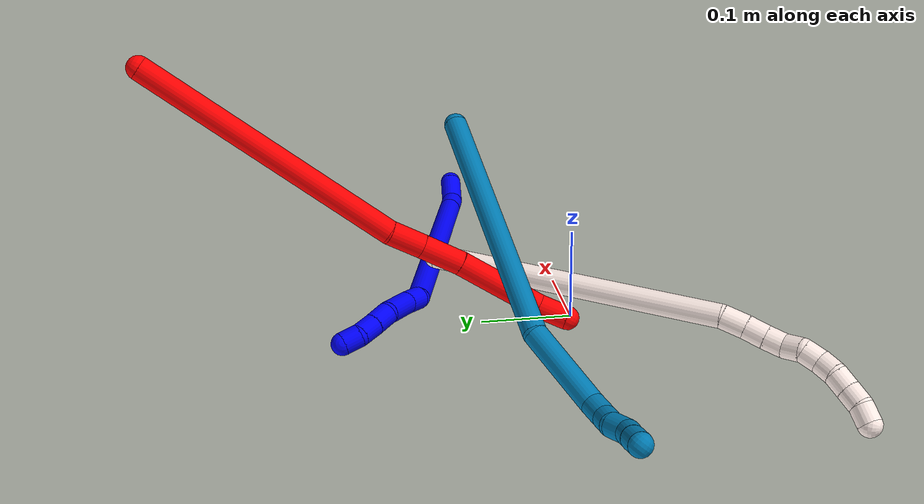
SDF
<sdf version="1.7">
 <world name="default">
  <model name="1">
   <static>0</static>
   <link name="1">
    <collision name="collision-cylinder-e_1_1_4">
     <pose>-0.01138 0.009706 -0.011918 -2.45812 -0.637345 1.49565</pose>
     <geometry><cylinder><radius>0.0125</radius><length>0.038249</length></cylinder></geometry>
     <surface>
      <friction><ode><mu>1.16</mu><mu2>1.16</mu2><slip1>0</slip1><slip2>0</slip2></ode></friction>
      <contact><ode><kp>1e+06</kp><kd>1</kd><max_vel>0</max_vel><min_depth>0.001</min_depth></ode></contact>
     </surface>
    </collision>
    <visual name="visual-cylinder-e_1_1_4">
     <pose>-0.01138 0.009706 -0.011918 -2.45812 -0.637345 1.49565</pose>
     <geometry><cylinder><radius>0.0125</radius><length>0.038249</length></cylinder></geometry>
     <material><ambient>0 0 1 1</ambient></material>
    </visual>
    <collision name="collision-cylinder-e_2_4_5">
     <pose>-0.029485 0.021566 -0.035536 -2.95954 -0.514452 2.47361</pose>
     <geometry><cylinder><radius>0.0125</radius><length>0.027332</length></cylinder></geometry>
     <surface>
      <friction><ode><mu>1.16</mu><mu2>1.16</mu2><slip1>0</slip1><slip2>0</slip2></ode></friction>
      <contact><ode><kp>1e+06</kp><kd>1</kd><max_vel>0</max_vel><min_depth>0.001</min_depth></ode></contact>
     </surface>
    </collision>
    <visual name="visual-cylinder-e_2_4_5">
     <pose>-0.029485 0.021566 -0.035536 -2.95954 -0.514452 2.47361</pose>
     <geometry><cylinder><radius>0.0125</radius><length>0.027332</length></cylinder></geometry>
     <material><ambient>0 0 1 1</ambient></material>
    </visual>
    <collision name="collision-cylinder-e_3_5_6">
     <pose>-0.110078 0.04758 -0.176394 -2.95891 -0.512318 2.46875</pose>
     <geometry><cylinder><radius>0.0125</radius><length>0.301381</length></cylinder></geometry>
     <surface>
      <friction><ode><mu>1.16</mu><mu2>1.16</mu2><slip1>0</slip1><slip2>0</slip2></ode></friction>
      <contact><ode><kp>1e+06</kp><kd>1</kd><max_vel>0</max_vel><min_depth>0.001</min_depth></ode></contact>
     </surface>
    </collision>
    <visual name="visual-cylinder-e_3_5_6">
     <pose>-0.110078 0.04758 -0.176394 -2.95891 -0.512318 2.46875</pose>
     <geometry><cylinder><radius>0.0125</radius><length>0.301381</length></cylinder></geometry>
     <material><ambient>0 0 1 1</ambient></material>
    </visual>
    <collision name="collision-cylinder-e_4_6_7">
     <pose>-0.191898 0.068237 -0.313573 2.7616 -0.744118 -2.22581</pose>
     <geometry><cylinder><radius>0.0125</radius><length>0.023479</length></cylinder></geometry>
     <surface>
      <friction><ode><mu>1.16</mu><mu2>1.16</mu2><slip1>0</slip1><slip2>0</slip2></ode></friction>
      <contact><ode><kp>1e+06</kp><kd>1</kd><max_vel>0</max_vel><min_depth>0.001</min_depth></ode></contact>
     </surface>
    </collision>
    <visual name="visual-cylinder-e_4_6_7">
     <pose>-0.191898 0.068237 -0.313573 2.7616 -0.744118 -2.22581</pose>
     <geometry><cylinder><radius>0.0125</radius><length>0.023479</length></cylinder></geometry>
     <material><ambient>0 0 1 1</ambient></material>
    </visual>
    <collision name="collision-cylinder-e_5_7_8">
     <pose>-0.212707 0.06141 -0.338722 2.9331 -0.633422 -2.52358</pose>
     <geometry><cylinder><radius>0.0125</radius><length>0.043443</length></cylinder></geometry>
     <surface>
      <friction><ode><mu>1.16</mu><mu2>1.16</mu2><slip1>0</slip1><slip2>0</slip2></ode></friction>
      <contact><ode><kp>1e+06</kp><kd>1</kd><max_vel>0</max_vel><min_depth>0.001</min_depth></ode></contact>
     </surface>
    </collision>
    <visual name="visual-cylinder-e_5_7_8">
     <pose>-0.212707 0.06141 -0.338722 2.9331 -0.633422 -2.52358</pose>
     <geometry><cylinder><radius>0.0125</radius><length>0.043443</length></cylinder></geometry>
     <material><ambient>0 0 1 1</ambient></material>
    </visual>
    <collision name="collision-cylinder-e_6_8_9">
     <pose>-0.235827 0.056534 -0.361471 2.92244 -1.05951 -2.77018</pose>
     <geometry><cylinder><radius>0.0125</radius><length>0.023538</length></cylinder></geometry>
     <surface>
      <friction><ode><mu>1.16</mu><mu2>1.16</mu2><slip1>0</slip1><slip2>0</slip2></ode></friction>
      <contact><ode><kp>1e+06</kp><kd>1</kd><max_vel>0</max_vel><min_depth>0.001</min_depth></ode></contact>
     </surface>
    </collision>
    <visual name="visual-cylinder-e_6_8_9">
     <pose>-0.235827 0.056534 -0.361471 2.92244 -1.05951 -2.77018</pose>
     <geometry><cylinder><radius>0.0125</radius><length>0.023538</length></cylinder></geometry>
     <material><ambient>0 0 1 1</ambient></material>
    </visual>
    <collision name="collision-cylinder-e_7_9_10">
     <pose>-0.255804 0.053609 -0.3723 2.83063 -1.05792 -2.61759</pose>
     <geometry><cylinder><radius>0.0125</radius><length>0.022294</length></cylinder></geometry>
     <surface>
      <friction><ode><mu>1.16</mu><mu2>1.16</mu2><slip1>0</slip1><slip2>0</slip2></ode></friction>
      <contact><ode><kp>1e+06</kp><kd>1</kd><max_vel>0</max_vel><min_depth>0.001</min_depth></ode></contact>
     </surface>
    </collision>
    <visual name="visual-cylinder-e_7_9_10">
     <pose>-0.255804 0.053609 -0.3723 2.83063 -1.05792 -2.61759</pose>
     <geometry><cylinder><radius>0.0125</radius><length>0.022294</length></cylinder></geometry>
     <material><ambient>0 0 1 1</ambient></material>
    </visual>
    <collision name="collision-cylinder-e_8_10_2">
     <pose>-0.274937 0.048398 -0.378775 1.91491 -1.19129 -1.53296</pose>
     <geometry><cylinder><radius>0.0125</radius><length>0.020283</length></cylinder></geometry>
     <surface>
      <friction><ode><mu>1.16</mu><mu2>1.16</mu2><slip1>0</slip1><slip2>0</slip2></ode></friction>
      <contact><ode><kp>1e+06</kp><kd>1</kd><max_vel>0</max_vel><min_depth>0.001</min_depth></ode></contact>
     </surface>
    </collision>
    <visual name="visual-cylinder-e_8_10_2">
     <pose>-0.274937 0.048398 -0.378775 1.91491 -1.19129 -1.53296</pose>
     <geometry><cylinder><radius>0.0125</radius><length>0.020283</length></cylinder></geometry>
     <material><ambient>0 0 1 1</ambient></material>
    </visual>
    <collision name="collision-sphere-2">
     <pose>-0.284357 0.044861 -0.380042 0 -0 0</pose>
     <geometry><sphere><radius>0.0125</radius></sphere></geometry>
     <surface>
      <friction><ode><mu>1.16</mu><mu2>1.16</mu2><slip1>0</slip1><slip2>0</slip2></ode></friction>
      <contact><ode><kp>1e+06</kp><kd>1</kd><max_vel>0</max_vel><min_depth>0.001</min_depth></ode></contact>
     </surface>
    </collision>
    <visual name="visual-sphere-2">
     <pose>-0.284357 0.044861 -0.380042 0 -0 0</pose>
     <geometry><sphere><radius>0.0125</radius></sphere></geometry>
     <material><ambient>0 0 1 1</ambient></material>
    </visual>
    <collision name="collision-sphere-10">
     <pose>-0.265517 0.051935 -0.377507 0 -0 0</pose>
     <geometry><sphere><radius>0.0125</radius></sphere></geometry>
     <surface>
      <friction><ode><mu>1.16</mu><mu2>1.16</mu2><slip1>0</slip1><slip2>0</slip2></ode></friction>
      <contact><ode><kp>1e+06</kp><kd>1</kd><max_vel>0</max_vel><min_depth>0.001</min_depth></ode></contact>
     </surface>
    </collision>
    <visual name="visual-sphere-10">
     <pose>-0.265517 0.051935 -0.377507 0 -0 0</pose>
     <geometry><sphere><radius>0.0125</radius></sphere></geometry>
     <material><ambient>0 0 1 1</ambient></material>
    </visual>
    <collision name="collision-sphere-9">
     <pose>-0.246091 0.055282 -0.367092 0 -0 0</pose>
     <geometry><sphere><radius>0.0125</radius></sphere></geometry>
     <surface>
      <friction><ode><mu>1.16</mu><mu2>1.16</mu2><slip1>0</slip1><slip2>0</slip2></ode></friction>
      <contact><ode><kp>1e+06</kp><kd>1</kd><max_vel>0</max_vel><min_depth>0.001</min_depth></ode></contact>
     </surface>
    </collision>
    <visual name="visual-sphere-9">
     <pose>-0.246091 0.055282 -0.367092 0 -0 0</pose>
     <geometry><sphere><radius>0.0125</radius></sphere></geometry>
     <material><ambient>0 0 1 1</ambient></material>
    </visual>
    <collision name="collision-sphere-4">
     <pose>-0.022761 0.019412 -0.023835 0 -0 0</pose>
     <geometry><sphere><radius>0.0125</radius></sphere></geometry>
     <surface>
      <friction><ode><mu>1.16</mu><mu2>1.16</mu2><slip1>0</slip1><slip2>0</slip2></ode></friction>
      <contact><ode><kp>1e+06</kp><kd>1</kd><max_vel>0</max_vel><min_depth>0.001</min_depth></ode></contact>
     </surface>
    </collision>
    <visual name="visual-sphere-4">
     <pose>-0.022761 0.019412 -0.023835 0 -0 0</pose>
     <geometry><sphere><radius>0.0125</radius></sphere></geometry>
     <material><ambient>0 0 1 1</ambient></material>
    </visual>
    <collision name="collision-sphere-1">
     <geometry><sphere><radius>0.0125</radius></sphere></geometry>
     <surface>
      <friction><ode><mu>1.16</mu><mu2>1.16</mu2><slip1>0</slip1><slip2>0</slip2></ode></friction>
      <contact><ode><kp>1e+06</kp><kd>1</kd><max_vel>0</max_vel><min_depth>0.001</min_depth></ode></contact>
     </surface>
    </collision>
    <visual name="visual-sphere-1">
     <geometry><sphere><radius>0.0125</radius></sphere></geometry>
     <material><ambient>0 0 1 1</ambient></material>
    </visual>
    <collision name="collision-sphere-8">
     <pose>-0.225564 0.057786 -0.355851 0 -0 0</pose>
     <geometry><sphere><radius>0.0125</radius></sphere></geometry>
     <surface>
      <friction><ode><mu>1.16</mu><mu2>1.16</mu2><slip1>0</slip1><slip2>0</slip2></ode></friction>
      <contact><ode><kp>1e+06</kp><kd>1</kd><max_vel>0</max_vel><min_depth>0.001</min_depth></ode></contact>
     </surface>
    </collision>
    <visual name="visual-sphere-8">
     <pose>-0.225564 0.057786 -0.355851 0 -0 0</pose>
     <geometry><sphere><radius>0.0125</radius></sphere></geometry>
     <material><ambient>0 0 1 1</ambient></material>
    </visual>
    <collision name="collision-sphere-5">
     <pose>-0.03621 0.02372 -0.047236 0 -0 0</pose>
     <geometry><sphere><radius>0.0125</radius></sphere></geometry>
     <surface>
      <friction><ode><mu>1.16</mu><mu2>1.16</mu2><slip1>0</slip1><slip2>0</slip2></ode></friction>
      <contact><ode><kp>1e+06</kp><kd>1</kd><max_vel>0</max_vel><min_depth>0.001</min_depth></ode></contact>
     </surface>
    </collision>
    <visual name="visual-sphere-5">
     <pose>-0.03621 0.02372 -0.047236 0 -0 0</pose>
     <geometry><sphere><radius>0.0125</radius></sphere></geometry>
     <material><ambient>0 0 1 1</ambient></material>
    </visual>
    <collision name="collision-sphere-6">
     <pose>-0.183946 0.071441 -0.305552 0 -0 0</pose>
     <geometry><sphere><radius>0.0125</radius></sphere></geometry>
     <surface>
      <friction><ode><mu>1.16</mu><mu2>1.16</mu2><slip1>0</slip1><slip2>0</slip2></ode></friction>
      <contact><ode><kp>1e+06</kp><kd>1</kd><max_vel>0</max_vel><min_depth>0.001</min_depth></ode></contact>
     </surface>
    </collision>
    <visual name="visual-sphere-6">
     <pose>-0.183946 0.071441 -0.305552 0 -0 0</pose>
     <geometry><sphere><radius>0.0125</radius></sphere></geometry>
     <material><ambient>0 0 1 1</ambient></material>
    </visual>
    <collision name="collision-sphere-7">
     <pose>-0.199849 0.065034 -0.321594 0 -0 0</pose>
     <geometry><sphere><radius>0.0125</radius></sphere></geometry>
     <surface>
      <friction><ode><mu>1.16</mu><mu2>1.16</mu2><slip1>0</slip1><slip2>0</slip2></ode></friction>
      <contact><ode><kp>1e+06</kp><kd>1</kd><max_vel>0</max_vel><min_depth>0.001</min_depth></ode></contact>
     </surface>
    </collision>
    <visual name="visual-sphere-7">
     <pose>-0.199849 0.065034 -0.321594 0 -0 0</pose>
     <geometry><sphere><radius>0.0125</radius></sphere></geometry>
     <material><ambient>0 0 1 1</ambient></material>
    </visual>
    <inertial>
     <pose>-0.129987 0.046156 -0.202316 0 -0 0</pose>
     <mass>0.5</mass>
     <inertia>
      <ixx>-0.000349</ixx>
      <ixy>0</ixy>
      <ixz>0</ixz>
      <iyy>0.003158</iyy>
      <iyz>0</iyz>
      <izz>0.000747</izz>
     </inertia>
    </inertial>
   </link>
   <pose>0.3883 0.079809 0.026536 -2.23077 -0.650022 -1.13955</pose>
  </model>
  <model name="2">
   <static>0</static>
   <link name="2">
    <collision name="collision-cylinder-e_1_1_4">
     <pose>-0.00029 0.008816 -0.146254 -3.08139 -0.001978 0.065666</pose>
     <geometry><cylinder><radius>0.0125</radius><length>0.293039</length></cylinder></geometry>
     <surface>
      <friction><ode><mu>1.16</mu><mu2>1.16</mu2><slip1>0</slip1><slip2>0</slip2></ode></friction>
      <contact><ode><kp>1e+06</kp><kd>1</kd><max_vel>0</max_vel><min_depth>0.001</min_depth></ode></contact>
     </surface>
    </collision>
    <visual name="visual-cylinder-e_1_1_4">
     <pose>-0.00029 0.008816 -0.146254 -3.08139 -0.001978 0.065666</pose>
     <geometry><cylinder><radius>0.0125</radius><length>0.293039</length></cylinder></geometry>
     <material><ambient>1 0 0 1</ambient></material>
    </visual>
    <collision name="collision-cylinder-e_2_4_5">
     <pose>0.002159 0.015623 -0.310561 3.03079 0.149621 1.86755</pose>
     <geometry><cylinder><radius>0.0125</radius><length>0.036741</length></cylinder></geometry>
     <surface>
      <friction><ode><mu>1.16</mu><mu2>1.16</mu2><slip1>0</slip1><slip2>0</slip2></ode></friction>
      <contact><ode><kp>1e+06</kp><kd>1</kd><max_vel>0</max_vel><min_depth>0.001</min_depth></ode></contact>
     </surface>
    </collision>
    <visual name="visual-cylinder-e_2_4_5">
     <pose>0.002159 0.015623 -0.310561 3.03079 0.149621 1.86755</pose>
     <geometry><cylinder><radius>0.0125</radius><length>0.036741</length></cylinder></geometry>
     <material><ambient>1 0 0 1</ambient></material>
    </visual>
    <collision name="collision-cylinder-e_3_5_6">
     <pose>0.005888 0.011326 -0.350513 3.03747 0.044981 0.815051</pose>
     <geometry><cylinder><radius>0.0125</radius><length>0.04408</length></cylinder></geometry>
     <surface>
      <friction><ode><mu>1.16</mu><mu2>1.16</mu2><slip1>0</slip1><slip2>0</slip2></ode></friction>
      <contact><ode><kp>1e+06</kp><kd>1</kd><max_vel>0</max_vel><min_depth>0.001</min_depth></ode></contact>
     </surface>
    </collision>
    <visual name="visual-cylinder-e_3_5_6">
     <pose>0.005888 0.011326 -0.350513 3.03747 0.044981 0.815051</pose>
     <geometry><cylinder><radius>0.0125</radius><length>0.04408</length></cylinder></geometry>
     <material><ambient>1 0 0 1</ambient></material>
    </visual>
    <collision name="collision-cylinder-e_4_6_7">
     <pose>0.00878 0.008294 -0.419253 3.1257 0.040558 2.39489</pose>
     <geometry><cylinder><radius>0.0125</radius><length>0.093772</length></cylinder></geometry>
     <surface>
      <friction><ode><mu>1.16</mu><mu2>1.16</mu2><slip1>0</slip1><slip2>0</slip2></ode></friction>
      <contact><ode><kp>1e+06</kp><kd>1</kd><max_vel>0</max_vel><min_depth>0.001</min_depth></ode></contact>
     </surface>
    </collision>
    <visual name="visual-cylinder-e_4_6_7">
     <pose>0.00878 0.008294 -0.419253 3.1257 0.040558 2.39489</pose>
     <geometry><cylinder><radius>0.0125</radius><length>0.093772</length></cylinder></geometry>
     <material><ambient>1 0 0 1</ambient></material>
    </visual>
    <collision name="collision-cylinder-e_5_7_2">
     <pose>0.006238 0.005461 -0.481516 3.00702 -0.278117 -2.24415</pose>
     <geometry><cylinder><radius>0.0125</radius><length>0.032368</length></cylinder></geometry>
     <surface>
      <friction><ode><mu>1.16</mu><mu2>1.16</mu2><slip1>0</slip1><slip2>0</slip2></ode></friction>
      <contact><ode><kp>1e+06</kp><kd>1</kd><max_vel>0</max_vel><min_depth>0.001</min_depth></ode></contact>
     </surface>
    </collision>
    <visual name="visual-cylinder-e_5_7_2">
     <pose>0.006238 0.005461 -0.481516 3.00702 -0.278117 -2.24415</pose>
     <geometry><cylinder><radius>0.0125</radius><length>0.032368</length></cylinder></geometry>
     <material><ambient>1 0 0 1</ambient></material>
    </visual>
    <collision name="collision-sphere-2">
     <pose>0.001795 0.003373 -0.496938 0 -0 0</pose>
     <geometry><sphere><radius>0.0125</radius></sphere></geometry>
     <surface>
      <friction><ode><mu>1.16</mu><mu2>1.16</mu2><slip1>0</slip1><slip2>0</slip2></ode></friction>
      <contact><ode><kp>1e+06</kp><kd>1</kd><max_vel>0</max_vel><min_depth>0.001</min_depth></ode></contact>
     </surface>
    </collision>
    <visual name="visual-sphere-2">
     <pose>0.001795 0.003373 -0.496938 0 -0 0</pose>
     <geometry><sphere><radius>0.0125</radius></sphere></geometry>
     <material><ambient>1 0 0 1</ambient></material>
    </visual>
    <collision name="collision-sphere-7">
     <pose>0.010681 0.007549 -0.466095 0 -0 0</pose>
     <geometry><sphere><radius>0.0125</radius></sphere></geometry>
     <surface>
      <friction><ode><mu>1.16</mu><mu2>1.16</mu2><slip1>0</slip1><slip2>0</slip2></ode></friction>
      <contact><ode><kp>1e+06</kp><kd>1</kd><max_vel>0</max_vel><min_depth>0.001</min_depth></ode></contact>
     </surface>
    </collision>
    <visual name="visual-sphere-7">
     <pose>0.010681 0.007549 -0.466095 0 -0 0</pose>
     <geometry><sphere><radius>0.0125</radius></sphere></geometry>
     <material><ambient>1 0 0 1</ambient></material>
    </visual>
    <collision name="collision-sphere-6">
     <pose>0.006879 0.009038 -0.372412 0 -0 0</pose>
     <geometry><sphere><radius>0.0125</radius></sphere></geometry>
     <surface>
      <friction><ode><mu>1.16</mu><mu2>1.16</mu2><slip1>0</slip1><slip2>0</slip2></ode></friction>
      <contact><ode><kp>1e+06</kp><kd>1</kd><max_vel>0</max_vel><min_depth>0.001</min_depth></ode></contact>
     </surface>
    </collision>
    <visual name="visual-sphere-6">
     <pose>0.006879 0.009038 -0.372412 0 -0 0</pose>
     <geometry><sphere><radius>0.0125</radius></sphere></geometry>
     <material><ambient>1 0 0 1</ambient></material>
    </visual>
    <collision name="collision-sphere-5">
     <pose>0.004897 0.013615 -0.328615 0 -0 0</pose>
     <geometry><sphere><radius>0.0125</radius></sphere></geometry>
     <surface>
      <friction><ode><mu>1.16</mu><mu2>1.16</mu2><slip1>0</slip1><slip2>0</slip2></ode></friction>
      <contact><ode><kp>1e+06</kp><kd>1</kd><max_vel>0</max_vel><min_depth>0.001</min_depth></ode></contact>
     </surface>
    </collision>
    <visual name="visual-sphere-5">
     <pose>0.004897 0.013615 -0.328615 0 -0 0</pose>
     <geometry><sphere><radius>0.0125</radius></sphere></geometry>
     <material><ambient>1 0 0 1</ambient></material>
    </visual>
    <collision name="collision-sphere-1">
     <geometry><sphere><radius>0.0125</radius></sphere></geometry>
     <surface>
      <friction><ode><mu>1.16</mu><mu2>1.16</mu2><slip1>0</slip1><slip2>0</slip2></ode></friction>
      <contact><ode><kp>1e+06</kp><kd>1</kd><max_vel>0</max_vel><min_depth>0.001</min_depth></ode></contact>
     </surface>
    </collision>
    <visual name="visual-sphere-1">
     <geometry><sphere><radius>0.0125</radius></sphere></geometry>
     <material><ambient>1 0 0 1</ambient></material>
    </visual>
    <collision name="collision-sphere-4">
     <pose>-0.00058 0.017632 -0.292507 0 -0 0</pose>
     <geometry><sphere><radius>0.0125</radius></sphere></geometry>
     <surface>
      <friction><ode><mu>1.16</mu><mu2>1.16</mu2><slip1>0</slip1><slip2>0</slip2></ode></friction>
      <contact><ode><kp>1e+06</kp><kd>1</kd><max_vel>0</max_vel><min_depth>0.001</min_depth></ode></contact>
     </surface>
    </collision>
    <visual name="visual-sphere-4">
     <pose>-0.00058 0.017632 -0.292507 0 -0 0</pose>
     <geometry><sphere><radius>0.0125</radius></sphere></geometry>
     <material><ambient>1 0 0 1</ambient></material>
    </visual>
    <inertial>
     <pose>0.002558 0.009222 -0.249238 0 -0 0</pose>
     <mass>0.5</mass>
     <inertia>
      <ixx>0.002249</ixx>
      <ixy>0</ixy>
      <ixz>0</ixz>
      <iyy>-0.001852</iyy>
      <iyz>0</iyz>
      <izz>-0.000161</izz>
     </inertia>
    </inertial>
   </link>
   <pose>-0.040679 0.442279 0.316303 -0.988297 0.279137 0.007842</pose>
  </model>
  <model name="9">
   <static>0</static>
   <link name="9">
    <collision name="collision-cylinder-e_1_1_4">
     <pose>-0.137821 -0.007368 -0.057182 3.01345 -1.17459 -2.94941</pose>
     <geometry><cylinder><radius>0.0125</radius><length>0.298788</length></cylinder></geometry>
     <surface>
      <friction><ode><mu>1.16</mu><mu2>1.16</mu2><slip1>0</slip1><slip2>0</slip2></ode></friction>
      <contact><ode><kp>1e+06</kp><kd>1</kd><max_vel>0</max_vel><min_depth>0.001</min_depth></ode></contact>
     </surface>
    </collision>
    <visual name="visual-cylinder-e_1_1_4">
     <pose>-0.137821 -0.007368 -0.057182 3.01345 -1.17459 -2.94941</pose>
     <geometry><cylinder><radius>0.0125</radius><length>0.298788</length></cylinder></geometry>
     <material><ambient>0 0.490196 0.709804 1</ambient></material>
    </visual>
    <collision name="collision-cylinder-e_2_4_5">
     <pose>-0.318452 -0.031024 -0.122426 2.03044 -1.16931 -1.63476</pose>
     <geometry><cylinder><radius>0.0125</radius><length>0.093017</length></cylinder></geometry>
     <surface>
      <friction><ode><mu>1.16</mu><mu2>1.16</mu2><slip1>0</slip1><slip2>0</slip2></ode></friction>
      <contact><ode><kp>1e+06</kp><kd>1</kd><max_vel>0</max_vel><min_depth>0.001</min_depth></ode></contact>
     </surface>
    </collision>
    <visual name="visual-cylinder-e_2_4_5">
     <pose>-0.318452 -0.031024 -0.122426 2.03044 -1.16931 -1.63476</pose>
     <geometry><cylinder><radius>0.0125</radius><length>0.093017</length></cylinder></geometry>
     <material><ambient>0 0.490196 0.709804 1</ambient></material>
    </visual>
    <collision name="collision-cylinder-e_3_5_6">
     <pose>-0.373555 -0.045992 -0.131141 -2.02921 -1.45156 1.91937</pose>
     <geometry><cylinder><radius>0.0125</radius><length>0.02476</length></cylinder></geometry>
     <surface>
      <friction><ode><mu>1.16</mu><mu2>1.16</mu2><slip1>0</slip1><slip2>0</slip2></ode></friction>
      <contact><ode><kp>1e+06</kp><kd>1</kd><max_vel>0</max_vel><min_depth>0.001</min_depth></ode></contact>
     </surface>
    </collision>
    <visual name="visual-cylinder-e_3_5_6">
     <pose>-0.373555 -0.045992 -0.131141 -2.02921 -1.45156 1.91937</pose>
     <geometry><cylinder><radius>0.0125</radius><length>0.02476</length></cylinder></geometry>
     <material><ambient>0 0.490196 0.709804 1</ambient></material>
    </visual>
    <collision name="collision-cylinder-e_4_6_7">
     <pose>-0.395139 -0.040682 -0.131779 -1.56751 -1.16516 1.16214</pose>
     <geometry><cylinder><radius>0.0125</radius><length>0.020225</length></cylinder></geometry>
     <surface>
      <friction><ode><mu>1.16</mu><mu2>1.16</mu2><slip1>0</slip1><slip2>0</slip2></ode></friction>
      <contact><ode><kp>1e+06</kp><kd>1</kd><max_vel>0</max_vel><min_depth>0.001</min_depth></ode></contact>
     </surface>
    </collision>
    <visual name="visual-cylinder-e_4_6_7">
     <pose>-0.395139 -0.040682 -0.131779 -1.56751 -1.16516 1.16214</pose>
     <geometry><cylinder><radius>0.0125</radius><length>0.020225</length></cylinder></geometry>
     <material><ambient>0 0.490196 0.709804 1</ambient></material>
    </visual>
    <collision name="collision-cylinder-e_5_7_8">
     <pose>-0.415226 -0.035884 -0.129176 -0.302187 -1.32457 0.236342</pose>
     <geometry><cylinder><radius>0.0125</radius><length>0.022263</length></cylinder></geometry>
     <surface>
      <friction><ode><mu>1.16</mu><mu2>1.16</mu2><slip1>0</slip1><slip2>0</slip2></ode></friction>
      <contact><ode><kp>1e+06</kp><kd>1</kd><max_vel>0</max_vel><min_depth>0.001</min_depth></ode></contact>
     </surface>
    </collision>
    <visual name="visual-cylinder-e_5_7_8">
     <pose>-0.415226 -0.035884 -0.129176 -0.302187 -1.32457 0.236342</pose>
     <geometry><cylinder><radius>0.0125</radius><length>0.022263</length></cylinder></geometry>
     <material><ambient>0 0.490196 0.709804 1</ambient></material>
    </visual>
    <collision name="collision-cylinder-e_6_8_9">
     <pose>-0.434879 -0.029774 -0.126337 -1.52396 -1.03084 0.991144</pose>
     <geometry><cylinder><radius>0.0125</radius><length>0.020651</length></cylinder></geometry>
     <surface>
      <friction><ode><mu>1.16</mu><mu2>1.16</mu2><slip1>0</slip1><slip2>0</slip2></ode></friction>
      <contact><ode><kp>1e+06</kp><kd>1</kd><max_vel>0</max_vel><min_depth>0.001</min_depth></ode></contact>
     </surface>
    </collision>
    <visual name="visual-cylinder-e_6_8_9">
     <pose>-0.434879 -0.029774 -0.126337 -1.52396 -1.03084 0.991144</pose>
     <geometry><cylinder><radius>0.0125</radius><length>0.020651</length></cylinder></geometry>
     <material><ambient>0 0.490196 0.709804 1</ambient></material>
    </visual>
    <collision name="collision-cylinder-e_7_9_2">
     <pose>-0.452861 -0.020054 -0.125656 -1.47329 -1.11817 1.0323</pose>
     <geometry><cylinder><radius>0.0125</radius><length>0.020295</length></cylinder></geometry>
     <surface>
      <friction><ode><mu>1.16</mu><mu2>1.16</mu2><slip1>0</slip1><slip2>0</slip2></ode></friction>
      <contact><ode><kp>1e+06</kp><kd>1</kd><max_vel>0</max_vel><min_depth>0.001</min_depth></ode></contact>
     </surface>
    </collision>
    <visual name="visual-cylinder-e_7_9_2">
     <pose>-0.452861 -0.020054 -0.125656 -1.47329 -1.11817 1.0323</pose>
     <geometry><cylinder><radius>0.0125</radius><length>0.020295</length></cylinder></geometry>
     <material><ambient>0 0.490196 0.709804 1</ambient></material>
    </visual>
    <collision name="collision-sphere-2">
     <pose>-0.461987 -0.015637 -0.125224 0 -0 0</pose>
     <geometry><sphere><radius>0.0125</radius></sphere></geometry>
     <surface>
      <friction><ode><mu>1.16</mu><mu2>1.16</mu2><slip1>0</slip1><slip2>0</slip2></ode></friction>
      <contact><ode><kp>1e+06</kp><kd>1</kd><max_vel>0</max_vel><min_depth>0.001</min_depth></ode></contact>
     </surface>
    </collision>
    <visual name="visual-sphere-2">
     <pose>-0.461987 -0.015637 -0.125224 0 -0 0</pose>
     <geometry><sphere><radius>0.0125</radius></sphere></geometry>
     <material><ambient>0 0.490196 0.709804 1</ambient></material>
    </visual>
    <collision name="collision-sphere-9">
     <pose>-0.443735 -0.024471 -0.126088 0 -0 0</pose>
     <geometry><sphere><radius>0.0125</radius></sphere></geometry>
     <surface>
      <friction><ode><mu>1.16</mu><mu2>1.16</mu2><slip1>0</slip1><slip2>0</slip2></ode></friction>
      <contact><ode><kp>1e+06</kp><kd>1</kd><max_vel>0</max_vel><min_depth>0.001</min_depth></ode></contact>
     </surface>
    </collision>
    <visual name="visual-sphere-9">
     <pose>-0.443735 -0.024471 -0.126088 0 -0 0</pose>
     <geometry><sphere><radius>0.0125</radius></sphere></geometry>
     <material><ambient>0 0.490196 0.709804 1</ambient></material>
    </visual>
    <collision name="collision-sphere-4">
     <pose>-0.275642 -0.014736 -0.114363 0 -0 0</pose>
     <geometry><sphere><radius>0.0125</radius></sphere></geometry>
     <surface>
      <friction><ode><mu>1.16</mu><mu2>1.16</mu2><slip1>0</slip1><slip2>0</slip2></ode></friction>
      <contact><ode><kp>1e+06</kp><kd>1</kd><max_vel>0</max_vel><min_depth>0.001</min_depth></ode></contact>
     </surface>
    </collision>
    <visual name="visual-sphere-4">
     <pose>-0.275642 -0.014736 -0.114363 0 -0 0</pose>
     <geometry><sphere><radius>0.0125</radius></sphere></geometry>
     <material><ambient>0 0.490196 0.709804 1</ambient></material>
    </visual>
    <collision name="collision-sphere-1">
     <geometry><sphere><radius>0.0125</radius></sphere></geometry>
     <surface>
      <friction><ode><mu>1.16</mu><mu2>1.16</mu2><slip1>0</slip1><slip2>0</slip2></ode></friction>
      <contact><ode><kp>1e+06</kp><kd>1</kd><max_vel>0</max_vel><min_depth>0.001</min_depth></ode></contact>
     </surface>
    </collision>
    <visual name="visual-sphere-1">
     <geometry><sphere><radius>0.0125</radius></sphere></geometry>
     <material><ambient>0 0.490196 0.709804 1</ambient></material>
    </visual>
    <collision name="collision-sphere-8">
     <pose>-0.426022 -0.035076 -0.126585 0 -0 0</pose>
     <geometry><sphere><radius>0.0125</radius></sphere></geometry>
     <surface>
      <friction><ode><mu>1.16</mu><mu2>1.16</mu2><slip1>0</slip1><slip2>0</slip2></ode></friction>
      <contact><ode><kp>1e+06</kp><kd>1</kd><max_vel>0</max_vel><min_depth>0.001</min_depth></ode></contact>
     </surface>
    </collision>
    <visual name="visual-sphere-8">
     <pose>-0.426022 -0.035076 -0.126585 0 -0 0</pose>
     <geometry><sphere><radius>0.0125</radius></sphere></geometry>
     <material><ambient>0 0.490196 0.709804 1</ambient></material>
    </visual>
    <collision name="collision-sphere-5">
     <pose>-0.361262 -0.047313 -0.130489 0 -0 0</pose>
     <geometry><sphere><radius>0.0125</radius></sphere></geometry>
     <surface>
      <friction><ode><mu>1.16</mu><mu2>1.16</mu2><slip1>0</slip1><slip2>0</slip2></ode></friction>
      <contact><ode><kp>1e+06</kp><kd>1</kd><max_vel>0</max_vel><min_depth>0.001</min_depth></ode></contact>
     </surface>
    </collision>
    <visual name="visual-sphere-5">
     <pose>-0.361262 -0.047313 -0.130489 0 -0 0</pose>
     <geometry><sphere><radius>0.0125</radius></sphere></geometry>
     <material><ambient>0 0.490196 0.709804 1</ambient></material>
    </visual>
    <collision name="collision-sphere-6">
     <pose>-0.385847 -0.044672 -0.131792 0 -0 0</pose>
     <geometry><sphere><radius>0.0125</radius></sphere></geometry>
     <surface>
      <friction><ode><mu>1.16</mu><mu2>1.16</mu2><slip1>0</slip1><slip2>0</slip2></ode></friction>
      <contact><ode><kp>1e+06</kp><kd>1</kd><max_vel>0</max_vel><min_depth>0.001</min_depth></ode></contact>
     </surface>
    </collision>
    <visual name="visual-sphere-6">
     <pose>-0.385847 -0.044672 -0.131792 0 -0 0</pose>
     <geometry><sphere><radius>0.0125</radius></sphere></geometry>
     <material><ambient>0 0.490196 0.709804 1</ambient></material>
    </visual>
    <collision name="collision-sphere-7">
     <pose>-0.40443 -0.036691 -0.131766 0 -0 0</pose>
     <geometry><sphere><radius>0.0125</radius></sphere></geometry>
     <surface>
      <friction><ode><mu>1.16</mu><mu2>1.16</mu2><slip1>0</slip1><slip2>0</slip2></ode></friction>
      <contact><ode><kp>1e+06</kp><kd>1</kd><max_vel>0</max_vel><min_depth>0.001</min_depth></ode></contact>
     </surface>
    </collision>
    <visual name="visual-sphere-7">
     <pose>-0.40443 -0.036691 -0.131766 0 -0 0</pose>
     <geometry><sphere><radius>0.0125</radius></sphere></geometry>
     <material><ambient>0 0.490196 0.709804 1</ambient></material>
    </visual>
    <inertial>
     <pose>-0.230915 -0.017739 -0.084841 0 -0 0</pose>
     <mass>0.5</mass>
     <inertia>
      <ixx>-0.001073</ixx>
      <ixy>0</ixy>
      <ixz>0</ixz>
      <iyy>0.002102</iyy>
      <iyz>0</iyz>
      <izz>0.002257</izz>
     </inertia>
    </inertial>
   </link>
   <pose>0.084646 0.114977 0.202238 0.718456 -0.146307 0.391834</pose>
  </model>
  <model name="11">
   <static>0</static>
   <link name="11">
    <collision name="collision-cylinder-e_1_1_4">
     <pose>0.000202 0.000217 0.155852 -0.001394 0.001299 -1e-06</pose>
     <geometry><cylinder><radius>0.0125</radius><length>0.311705</length></cylinder></geometry>
     <surface>
      <friction><ode><mu>1.16</mu><mu2>1.16</mu2><slip1>0</slip1><slip2>0</slip2></ode></friction>
      <contact><ode><kp>1e+06</kp><kd>1</kd><max_vel>0</max_vel><min_depth>0.001</min_depth></ode></contact>
     </surface>
    </collision>
    <visual name="visual-cylinder-e_1_1_4">
     <pose>0.000202 0.000217 0.155852 -0.001394 0.001299 -1e-06</pose>
     <geometry><cylinder><radius>0.0125</radius><length>0.311705</length></cylinder></geometry>
     <material><ambient>1 0.933333 0.909804 1</ambient></material>
    </visual>
    <collision name="collision-cylinder-e_2_4_5">
     <pose>-0.001889 -0.002131 0.324164 0.203065 -0.178401 -0.018224</pose>
     <geometry><cylinder><radius>0.0125</radius><length>0.025852</length></cylinder></geometry>
     <surface>
      <friction><ode><mu>1.16</mu><mu2>1.16</mu2><slip1>0</slip1><slip2>0</slip2></ode></friction>
      <contact><ode><kp>1e+06</kp><kd>1</kd><max_vel>0</max_vel><min_depth>0.001</min_depth></ode></contact>
     </surface>
    </collision>
    <visual name="visual-cylinder-e_2_4_5">
     <pose>-0.001889 -0.002131 0.324164 0.203065 -0.178401 -0.018224</pose>
     <geometry><cylinder><radius>0.0125</radius><length>0.025852</length></cylinder></geometry>
     <material><ambient>1 0.933333 0.909804 1</ambient></material>
    </visual>
    <collision name="collision-cylinder-e_3_5_6">
     <pose>-0.006901 -0.006061 0.347111 0.129429 -0.251532 -0.016387</pose>
     <geometry><cylinder><radius>0.0125</radius><length>0.02184</length></cylinder></geometry>
     <surface>
      <friction><ode><mu>1.16</mu><mu2>1.16</mu2><slip1>0</slip1><slip2>0</slip2></ode></friction>
      <contact><ode><kp>1e+06</kp><kd>1</kd><max_vel>0</max_vel><min_depth>0.001</min_depth></ode></contact>
     </surface>
    </collision>
    <visual name="visual-cylinder-e_3_5_6">
     <pose>-0.006901 -0.006061 0.347111 0.129429 -0.251532 -0.016387</pose>
     <geometry><cylinder><radius>0.0125</radius><length>0.02184</length></cylinder></geometry>
     <material><ambient>1 0.933333 0.909804 1</ambient></material>
    </visual>
    <collision name="collision-cylinder-e_4_6_7">
     <pose>-0.01178 -0.008545 0.367459 0.112996 -0.214438 -0.012175</pose>
     <geometry><cylinder><radius>0.0125</radius><length>0.020312</length></cylinder></geometry>
     <surface>
      <friction><ode><mu>1.16</mu><mu2>1.16</mu2><slip1>0</slip1><slip2>0</slip2></ode></friction>
      <contact><ode><kp>1e+06</kp><kd>1</kd><max_vel>0</max_vel><min_depth>0.001</min_depth></ode></contact>
     </surface>
    </collision>
    <visual name="visual-cylinder-e_4_6_7">
     <pose>-0.01178 -0.008545 0.367459 0.112996 -0.214438 -0.012175</pose>
     <geometry><cylinder><radius>0.0125</radius><length>0.020312</length></cylinder></geometry>
     <material><ambient>1 0.933333 0.909804 1</ambient></material>
    </visual>
    <collision name="collision-cylinder-e_5_7_8">
     <pose>-0.014524 -0.00673 0.386941 -0.296039 -0.057933 0.008641</pose>
     <geometry><cylinder><radius>0.0125</radius><length>0.020152</length></cylinder></geometry>
     <surface>
      <friction><ode><mu>1.16</mu><mu2>1.16</mu2><slip1>0</slip1><slip2>0</slip2></ode></friction>
      <contact><ode><kp>1e+06</kp><kd>1</kd><max_vel>0</max_vel><min_depth>0.001</min_depth></ode></contact>
     </surface>
    </collision>
    <visual name="visual-cylinder-e_5_7_8">
     <pose>-0.014524 -0.00673 0.386941 -0.296039 -0.057933 0.008641</pose>
     <geometry><cylinder><radius>0.0125</radius><length>0.020152</length></cylinder></geometry>
     <material><ambient>1 0.933333 0.909804 1</ambient></material>
    </visual>
    <collision name="collision-cylinder-e_6_8_9">
     <pose>-0.018619 -0.005133 0.405836 0.143244 -0.358539 -0.026001</pose>
     <geometry><cylinder><radius>0.0125</radius><length>0.020013</length></cylinder></geometry>
     <surface>
      <friction><ode><mu>1.16</mu><mu2>1.16</mu2><slip1>0</slip1><slip2>0</slip2></ode></friction>
      <contact><ode><kp>1e+06</kp><kd>1</kd><max_vel>0</max_vel><min_depth>0.001</min_depth></ode></contact>
     </surface>
    </collision>
    <visual name="visual-cylinder-e_6_8_9">
     <pose>-0.018619 -0.005133 0.405836 0.143244 -0.358539 -0.026001</pose>
     <geometry><cylinder><radius>0.0125</radius><length>0.020013</length></cylinder></geometry>
     <material><ambient>1 0.933333 0.909804 1</ambient></material>
    </visual>
    <collision name="collision-cylinder-e_7_9_10">
     <pose>-0.026836 -0.00391 0.423626 -0.292128 -0.486713 0.073016</pose>
     <geometry><cylinder><radius>0.0125</radius><length>0.020121</length></cylinder></geometry>
     <surface>
      <friction><ode><mu>1.16</mu><mu2>1.16</mu2><slip1>0</slip1><slip2>0</slip2></ode></friction>
      <contact><ode><kp>1e+06</kp><kd>1</kd><max_vel>0</max_vel><min_depth>0.001</min_depth></ode></contact>
     </surface>
    </collision>
    <visual name="visual-cylinder-e_7_9_10">
     <pose>-0.026836 -0.00391 0.423626 -0.292128 -0.486713 0.073016</pose>
     <geometry><cylinder><radius>0.0125</radius><length>0.020121</length></cylinder></geometry>
     <material><ambient>1 0.933333 0.909804 1</ambient></material>
    </visual>
    <collision name="collision-cylinder-e_8_10_11">
     <pose>-0.037845 -0.001357 0.439907 0.000998 -0.681836 -0.000354</pose>
     <geometry><cylinder><radius>0.0125</radius><length>0.020004</length></cylinder></geometry>
     <surface>
      <friction><ode><mu>1.16</mu><mu2>1.16</mu2><slip1>0</slip1><slip2>0</slip2></ode></friction>
      <contact><ode><kp>1e+06</kp><kd>1</kd><max_vel>0</max_vel><min_depth>0.001</min_depth></ode></contact>
     </surface>
    </collision>
    <visual name="visual-cylinder-e_8_10_11">
     <pose>-0.037845 -0.001357 0.439907 0.000998 -0.681836 -0.000354</pose>
     <geometry><cylinder><radius>0.0125</radius><length>0.020004</length></cylinder></geometry>
     <material><ambient>1 0.933333 0.909804 1</ambient></material>
    </visual>
    <collision name="collision-cylinder-e_9_11_12">
     <pose>-0.050411 0.000443 0.455257 -0.233908 -0.676733 0.082642</pose>
     <geometry><cylinder><radius>0.0125</radius><length>0.020001</length></cylinder></geometry>
     <surface>
      <friction><ode><mu>1.16</mu><mu2>1.16</mu2><slip1>0</slip1><slip2>0</slip2></ode></friction>
      <contact><ode><kp>1e+06</kp><kd>1</kd><max_vel>0</max_vel><min_depth>0.001</min_depth></ode></contact>
     </surface>
    </collision>
    <visual name="visual-cylinder-e_9_11_12">
     <pose>-0.050411 0.000443 0.455257 -0.233908 -0.676733 0.082642</pose>
     <geometry><cylinder><radius>0.0125</radius><length>0.020001</length></cylinder></geometry>
     <material><ambient>1 0.933333 0.909804 1</ambient></material>
    </visual>
    <collision name="collision-cylinder-e_10_12_2">
     <pose>-0.064664 0.002499 0.46885 -0.041384 -0.925647 0.020651</pose>
     <geometry><cylinder><radius>0.0125</radius><length>0.02</length></cylinder></geometry>
     <surface>
      <friction><ode><mu>1.16</mu><mu2>1.16</mu2><slip1>0</slip1><slip2>0</slip2></ode></friction>
      <contact><ode><kp>1e+06</kp><kd>1</kd><max_vel>0</max_vel><min_depth>0.001</min_depth></ode></contact>
     </surface>
    </collision>
    <visual name="visual-cylinder-e_10_12_2">
     <pose>-0.064664 0.002499 0.46885 -0.041384 -0.925647 0.020651</pose>
     <geometry><cylinder><radius>0.0125</radius><length>0.02</length></cylinder></geometry>
     <material><ambient>1 0.933333 0.909804 1</ambient></material>
    </visual>
    <collision name="collision-sphere-2">
     <pose>-0.072654 0.002748 0.474858 0 -0 0</pose>
     <geometry><sphere><radius>0.0125</radius></sphere></geometry>
     <surface>
      <friction><ode><mu>1.16</mu><mu2>1.16</mu2><slip1>0</slip1><slip2>0</slip2></ode></friction>
      <contact><ode><kp>1e+06</kp><kd>1</kd><max_vel>0</max_vel><min_depth>0.001</min_depth></ode></contact>
     </surface>
    </collision>
    <visual name="visual-sphere-2">
     <pose>-0.072654 0.002748 0.474858 0 -0 0</pose>
     <geometry><sphere><radius>0.0125</radius></sphere></geometry>
     <material><ambient>1 0.933333 0.909804 1</ambient></material>
    </visual>
    <collision name="collision-sphere-12">
     <pose>-0.056674 0.00225 0.462842 0 -0 0</pose>
     <geometry><sphere><radius>0.0125</radius></sphere></geometry>
     <surface>
      <friction><ode><mu>1.16</mu><mu2>1.16</mu2><slip1>0</slip1><slip2>0</slip2></ode></friction>
      <contact><ode><kp>1e+06</kp><kd>1</kd><max_vel>0</max_vel><min_depth>0.001</min_depth></ode></contact>
     </surface>
    </collision>
    <visual name="visual-sphere-12">
     <pose>-0.056674 0.00225 0.462842 0 -0 0</pose>
     <geometry><sphere><radius>0.0125</radius></sphere></geometry>
     <material><ambient>1 0.933333 0.909804 1</ambient></material>
    </visual>
    <collision name="collision-sphere-11">
     <pose>-0.044148 -0.001364 0.447673 0 -0 0</pose>
     <geometry><sphere><radius>0.0125</radius></sphere></geometry>
     <surface>
      <friction><ode><mu>1.16</mu><mu2>1.16</mu2><slip1>0</slip1><slip2>0</slip2></ode></friction>
      <contact><ode><kp>1e+06</kp><kd>1</kd><max_vel>0</max_vel><min_depth>0.001</min_depth></ode></contact>
     </surface>
    </collision>
    <visual name="visual-sphere-11">
     <pose>-0.044148 -0.001364 0.447673 0 -0 0</pose>
     <geometry><sphere><radius>0.0125</radius></sphere></geometry>
     <material><ambient>1 0.933333 0.909804 1</ambient></material>
    </visual>
    <collision name="collision-sphere-10">
     <pose>-0.031541 -0.001349 0.432141 0 -0 0</pose>
     <geometry><sphere><radius>0.0125</radius></sphere></geometry>
     <surface>
      <friction><ode><mu>1.16</mu><mu2>1.16</mu2><slip1>0</slip1><slip2>0</slip2></ode></friction>
      <contact><ode><kp>1e+06</kp><kd>1</kd><max_vel>0</max_vel><min_depth>0.001</min_depth></ode></contact>
     </surface>
    </collision>
    <visual name="visual-sphere-10">
     <pose>-0.031541 -0.001349 0.432141 0 -0 0</pose>
     <geometry><sphere><radius>0.0125</radius></sphere></geometry>
     <material><ambient>1 0.933333 0.909804 1</ambient></material>
    </visual>
    <collision name="collision-sphere-9">
     <pose>-0.02213 -0.00647 0.415111 0 -0 0</pose>
     <geometry><sphere><radius>0.0125</radius></sphere></geometry>
     <surface>
      <friction><ode><mu>1.16</mu><mu2>1.16</mu2><slip1>0</slip1><slip2>0</slip2></ode></friction>
      <contact><ode><kp>1e+06</kp><kd>1</kd><max_vel>0</max_vel><min_depth>0.001</min_depth></ode></contact>
     </surface>
    </collision>
    <visual name="visual-sphere-9">
     <pose>-0.02213 -0.00647 0.415111 0 -0 0</pose>
     <geometry><sphere><radius>0.0125</radius></sphere></geometry>
     <material><ambient>1 0.933333 0.909804 1</ambient></material>
    </visual>
    <collision name="collision-sphere-4">
     <pose>0.000405 0.000435 0.311704 0 -0 0</pose>
     <geometry><sphere><radius>0.0125</radius></sphere></geometry>
     <surface>
      <friction><ode><mu>1.16</mu><mu2>1.16</mu2><slip1>0</slip1><slip2>0</slip2></ode></friction>
      <contact><ode><kp>1e+06</kp><kd>1</kd><max_vel>0</max_vel><min_depth>0.001</min_depth></ode></contact>
     </surface>
    </collision>
    <visual name="visual-sphere-4">
     <pose>0.000405 0.000435 0.311704 0 -0 0</pose>
     <geometry><sphere><radius>0.0125</radius></sphere></geometry>
     <material><ambient>1 0.933333 0.909804 1</ambient></material>
    </visual>
    <collision name="collision-sphere-1">
     <geometry><sphere><radius>0.0125</radius></sphere></geometry>
     <surface>
      <friction><ode><mu>1.16</mu><mu2>1.16</mu2><slip1>0</slip1><slip2>0</slip2></ode></friction>
      <contact><ode><kp>1e+06</kp><kd>1</kd><max_vel>0</max_vel><min_depth>0.001</min_depth></ode></contact>
     </surface>
    </collision>
    <visual name="visual-sphere-1">
     <geometry><sphere><radius>0.0125</radius></sphere></geometry>
     <material><ambient>1 0.933333 0.909804 1</ambient></material>
    </visual>
    <collision name="collision-sphere-8">
     <pose>-0.015108 -0.003795 0.396562 0 -0 0</pose>
     <geometry><sphere><radius>0.0125</radius></sphere></geometry>
     <surface>
      <friction><ode><mu>1.16</mu><mu2>1.16</mu2><slip1>0</slip1><slip2>0</slip2></ode></friction>
      <contact><ode><kp>1e+06</kp><kd>1</kd><max_vel>0</max_vel><min_depth>0.001</min_depth></ode></contact>
     </surface>
    </collision>
    <visual name="visual-sphere-8">
     <pose>-0.015108 -0.003795 0.396562 0 -0 0</pose>
     <geometry><sphere><radius>0.0125</radius></sphere></geometry>
     <material><ambient>1 0.933333 0.909804 1</ambient></material>
    </visual>
    <collision name="collision-sphere-5">
     <pose>-0.004183 -0.004696 0.336623 0 -0 0</pose>
     <geometry><sphere><radius>0.0125</radius></sphere></geometry>
     <surface>
      <friction><ode><mu>1.16</mu><mu2>1.16</mu2><slip1>0</slip1><slip2>0</slip2></ode></friction>
      <contact><ode><kp>1e+06</kp><kd>1</kd><max_vel>0</max_vel><min_depth>0.001</min_depth></ode></contact>
     </surface>
    </collision>
    <visual name="visual-sphere-5">
     <pose>-0.004183 -0.004696 0.336623 0 -0 0</pose>
     <geometry><sphere><radius>0.0125</radius></sphere></geometry>
     <material><ambient>1 0.933333 0.909804 1</ambient></material>
    </visual>
    <collision name="collision-sphere-6">
     <pose>-0.009619 -0.007426 0.357599 0 -0 0</pose>
     <geometry><sphere><radius>0.0125</radius></sphere></geometry>
     <surface>
      <friction><ode><mu>1.16</mu><mu2>1.16</mu2><slip1>0</slip1><slip2>0</slip2></ode></friction>
      <contact><ode><kp>1e+06</kp><kd>1</kd><max_vel>0</max_vel><min_depth>0.001</min_depth></ode></contact>
     </surface>
    </collision>
    <visual name="visual-sphere-6">
     <pose>-0.009619 -0.007426 0.357599 0 -0 0</pose>
     <geometry><sphere><radius>0.0125</radius></sphere></geometry>
     <material><ambient>1 0.933333 0.909804 1</ambient></material>
    </visual>
    <collision name="collision-sphere-7">
     <pose>-0.013941 -0.009664 0.377319 0 -0 0</pose>
     <geometry><sphere><radius>0.0125</radius></sphere></geometry>
     <surface>
      <friction><ode><mu>1.16</mu><mu2>1.16</mu2><slip1>0</slip1><slip2>0</slip2></ode></friction>
      <contact><ode><kp>1e+06</kp><kd>1</kd><max_vel>0</max_vel><min_depth>0.001</min_depth></ode></contact>
     </surface>
    </collision>
    <visual name="visual-sphere-7">
     <pose>-0.013941 -0.009664 0.377319 0 -0 0</pose>
     <geometry><sphere><radius>0.0125</radius></sphere></geometry>
     <material><ambient>1 0.933333 0.909804 1</ambient></material>
    </visual>
    <inertial>
     <pose>-0.009279 -0.001157 0.247462 0 -0 0</pose>
     <mass>0.5</mass>
     <inertia><ixx>0.002543</ixx><ixy>0</ixy><ixz>0</ixz><iyy>0.00255</iyy><iyz>0</iyz><izz>3.6e-05</izz></inertia>
    </inertial>
   </link>
   <pose>-0.026752 0.152958 0.093057 1.65752 -0.962611 -0.635502</pose>
  </model>
 </world>
</sdf>
